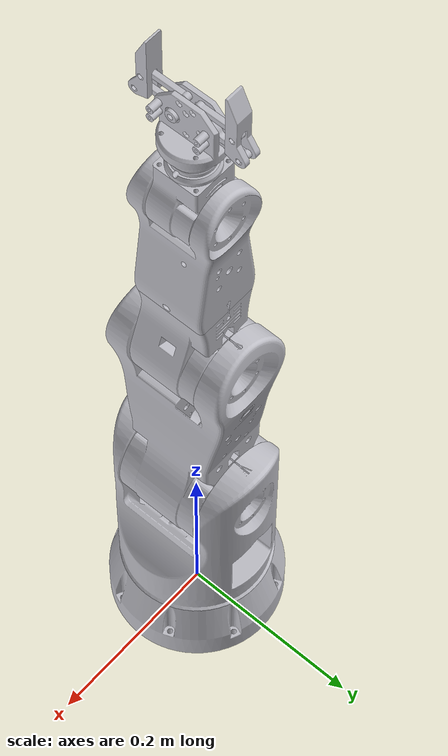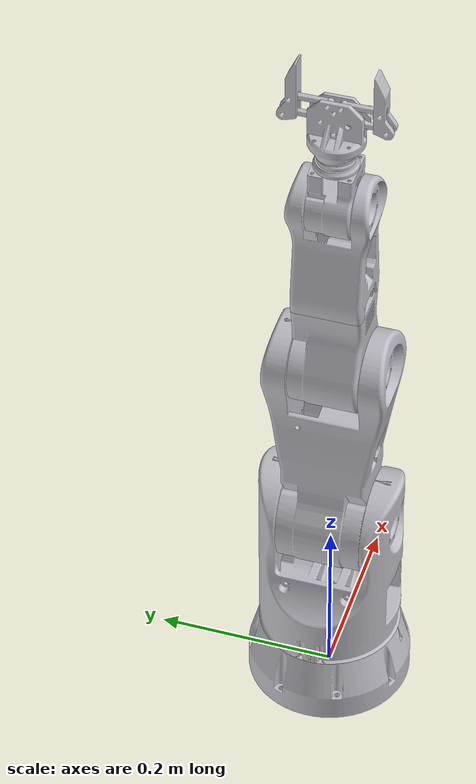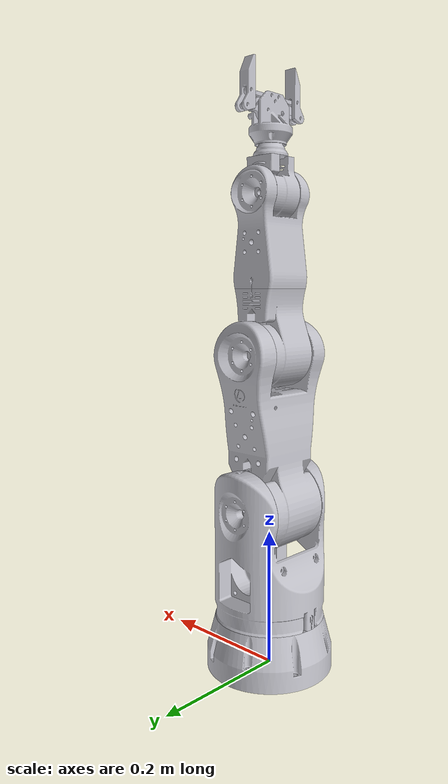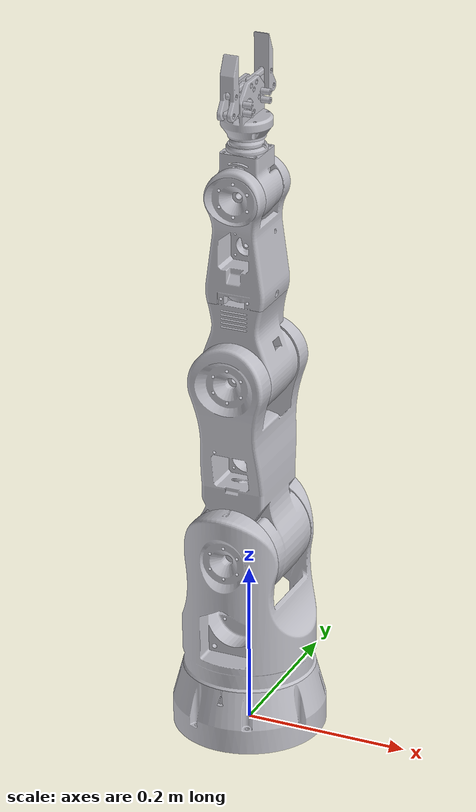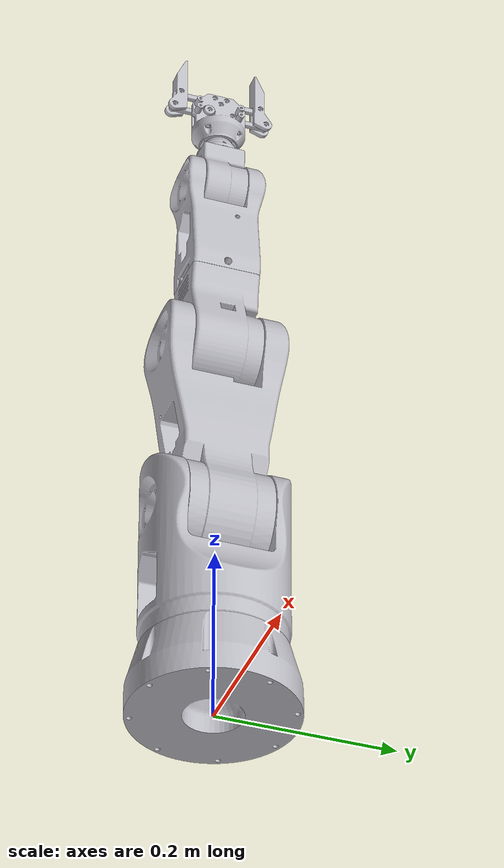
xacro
<?xml version="1.0" ?>
<robot name="innobot" xmlns:xacro="http://www.ros.org/wiki/xacro">

  <!-- external -->
  <link name="world"/>

  <link name="camera_frame"/>

  <xacro:arg name="use_fake_hardware" default="true" />
  <xacro:arg name="use_sim" default="false" />
  <xacro:arg name="fake_sensor_commands" default="false" />
  <xacro:arg name="prefix" default=""/>
  <xacro:arg name="slowdown" default="2.0"/>
  <xacro:arg name="use_gripper" default="true"/>

  <!-- innobot arm -->

  <xacro:include filename="$(find innobot_description)/urdf/innobot.description.urdf.xacro" />
  <xacro:include filename="$(find innobot_description)/urdf/innobot.control.urdf.xacro" />

  <xacro:innobot_arm
      prefix="$(arg prefix)"
     />

  <xacro:innobot_arm_ros2_control
    name="InnobotHardwareInterface" prefix="$(arg prefix)"
    use_sim="$(arg use_sim)"
    use_fake_hardware="$(arg use_fake_hardware)"
    fake_sensor_commands="$(arg fake_sensor_commands)"
    slowdown="$(arg slowdown)" />

  <!-- gripper -->

  <xacro:if value="$(arg use_gripper)">

    <xacro:include filename="$(find innobot_description)/gripper_description/urdf/gripper.description.urdf.xacro" />
    <xacro:include filename="$(find innobot_description)/gripper_description/urdf/gripper.control.urdf.xacro" />

    <joint name="$(arg prefix)gripper_to_arm" type="fixed">
      <origin xyz="0.0 0.0 0.035" rpy="0 0 0"/>
      <parent link="$(arg prefix)link_6_1"/>
      <child link="$(arg prefix)gripper_base_link"/>
      <axis xyz="-0.0 0.0 1.0"/>
    </joint>

    <xacro:innobot_gripper prefix="$(arg prefix)"/>

    <xacro:innobot_gripper_ros2_control
      name="GripperHardwareInterface" prefix="$(arg prefix)"
      use_sim="$(arg use_sim)"
      use_fake_hardware="$(arg use_fake_hardware)"
      fake_sensor_commands="$(arg fake_sensor_commands)"
      slowdown="$(arg slowdown)" />

    <!-- connect gripper and arm -->

  </xacro:if>

</robot>

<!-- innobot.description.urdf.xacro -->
<robot xmlns:xacro="http://www.ros.org/wiki/xacro">

  <xacro:macro name="innobot_arm" params="prefix">

    <xacro:arg name="prefix" default="" />

    <!-- links -->

    <link name="${prefix}base_link">
      <inertial>
        <origin rpy="0 0 0" xyz="0.0 0.0 0.0"/>
        <mass value="13.855"/>
        <inertia ixx="0.035465" ixy="0.0" ixz="-0.0" iyy="0.035483" iyz="-6e-06" izz="0.056413"/>
      </inertial>
      <visual>
        <origin rpy="0 0 0" xyz="0 0 0"/>
        <geometry>
          <mesh filename="package://innobot_description/meshes/base_link.stl" scale="0.001 0.001 0.001"/>
        </geometry>
        <material name="silver"/>
      </visual>
      <collision>
        <origin rpy="0 0 0" xyz="0 0 0"/>
        <geometry>
          <mesh filename="package://innobot_description/meshes/base_link.stl" scale="0.001 0.001 0.001"/>
        </geometry>
      </collision>
    </link>

    <link name="${prefix}link_1_1">
      <inertial>
        <origin rpy="0 0 0" xyz="0.0 0.0 0.0"/>
        <mass value="12.011"/>
        <inertia ixx="0.06297" ixy="0.0" ixz="-0.0" iyy="0.071" iyz="9.4e-05" izz="0.046659"/>
      </inertial>
      <visual>
        <origin rpy="0 0 0" xyz="0.0 0.0 -0.075"/>
        <geometry>
          <mesh filename="package://innobot_description/meshes/link_1_1.stl" scale="0.001 0.001 0.001"/>
        </geometry>
        <material name="silver"/>
      </visual>
      <collision>
        <origin rpy="0 0 0" xyz="0.0 0.0 -0.075"/>
        <geometry>
          <mesh filename="package://innobot_description/meshes/link_1_1.stl" scale="0.001 0.001 0.001"/>
        </geometry>
      </collision>
    </link>

    <link name="${prefix}link_2_1">
      <inertial>
        <origin rpy="0 0 0" xyz="0.0 0.0 0.075"/>
        <mass value="15.936"/>
        <inertia ixx="0.134333" ixy="-2.7e-05" ixz="-0.000521" iyy="0.140602" iyz="7.6e-05" izz="0.030731"/>
      </inertial>
      <visual>
        <origin rpy="0 0 0" xyz="0.0 0.0 -0.238"/>
        <geometry>
          <mesh filename="package://innobot_description/meshes/link_2_1.stl" scale="0.001 0.001 0.001"/>
        </geometry>
        <material name="silver"/>
      </visual>
      <collision>
        <origin rpy="0 0 0" xyz="0.0 0.0 -0.238"/>
        <geometry>
          <mesh filename="package://innobot_description/meshes/link_2_1.stl" scale="0.001 0.001 0.001"/>
        </geometry>
      </collision>
    </link>

    <link name="${prefix}link_3_1">
      <inertial>
        <origin rpy="0 0 0" xyz="0.0 0.0 0.0155"/>
        <mass value="5.041004757219209"/>
        <inertia ixx="0.009332" ixy="-2e-06" ixz="-4.5e-05" iyy="0.009148" iyz="6.6e-05" izz="0.005579"/>
      </inertial>
      <visual>
        <origin rpy="0 0 0" xyz="0.0 0.0 -0.459"/>
        <geometry>
          <mesh filename="package://innobot_description/meshes/link_3_1.stl" scale="0.001 0.001 0.001"/>
        </geometry>
        <material name="silver"/>
      </visual>
      <collision>
        <origin rpy="0 0 0" xyz="0.0 0.0 -0.459"/>
        <geometry>
          <mesh filename="package://innobot_description/meshes/link_3_1.stl" scale="0.001 0.001 0.001"/>
        </geometry>
      </collision>
    </link>

    <link name="${prefix}link_4_1">
      <inertial>
        <origin rpy="0 0 0" xyz="0.0 0.0 0.0"/>
        <mass value="3.5598085247676114"/>
        <inertia ixx="0.008642" ixy="1e-06" ixz="-7.4e-05" iyy="0.009421" iyz="-1.6e-05" izz="0.003882"/>
      </inertial>
      <visual>
        <origin rpy="0 0 0" xyz="0.0 0.0 -0.56"/>
        <geometry>
          <mesh filename="package://innobot_description/meshes/link_4_1.stl" scale="0.001 0.001 0.001"/>
        </geometry>
        <material name="silver"/>
      </visual>
      <collision>
        <origin rpy="0 0 0" xyz="0.0 0.0 -0.56"/>
        <geometry>
          <mesh filename="package://innobot_description/meshes/link_4_1.stl" scale="0.001 0.001 0.001"/>
        </geometry>
      </collision>
    </link>

    <link name="${prefix}link_5_1">
      <inertial>
        <origin rpy="0 0 0" xyz="0.0 0.0 0.004"/>
        <mass value="1.3072389659535424"/>
        <inertia ixx="0.000919" ixy="0.0" ixz="3e-06" iyy="0.000767" iyz="-1.6e-05" izz="0.000684"/>
      </inertial>
      <visual>
        <origin rpy="0 0 0" xyz="0.0 0.0 -0.683"/>
        <geometry>
          <mesh filename="package://innobot_description/meshes/link_5_1.stl" scale="0.001 0.001 0.001"/>
        </geometry>
        <material name="silver"/>
      </visual>
      <collision>
        <origin rpy="0 0 0" xyz="0.0 0.0 -0.683"/>
        <geometry>
          <mesh filename="package://innobot_description/meshes/link_5_1.stl" scale="0.001 0.001 0.001"/>
        </geometry>
      </collision>
    </link>

    <link name="${prefix}link_6_1">
      <inertial>
        <origin rpy="0 0 0" xyz="0.0 0.0 0.040"/>
        <mass value="0.16956132368991875"/>
        <inertia ixx="2.5e-05" ixy="-0.0" ixz="0.0" iyy="2.5e-05" iyz="-0.0" izz="4.1e-05"/>
      </inertial>
      <visual>
        <origin rpy="0 0 0" xyz="0.0 0.0 -0.734"/>
        <geometry>
          <mesh filename="package://innobot_description/meshes/link_6_1.stl" scale="0.001 0.001 0.001"/>
        </geometry>
        <material name="silver"/>
      </visual>
      <collision>
        <origin rpy="0 0 0" xyz="0.0 0.0 -0.734"/>
        <geometry>
          <mesh filename="package://innobot_description/meshes/link_6_1.stl" scale="0.001 0.001 0.001"/>
        </geometry>
      </collision>
    </link>

    <link name="${prefix}tcp">

    </link>

    <!-- joints -->

    <joint name="${prefix}fixed" type="fixed">
      <parent link="${prefix}world"/>
      <child link="${prefix}base_link"/>
    </joint>

    <joint name="${prefix}link_1_joint" type="revolute">
      <origin rpy="0 0 -1.57" xyz="0.0 0.0 0.075"/>
      <parent link="${prefix}base_link"/>
      <child link="${prefix}link_1_1"/>
      <axis xyz="0.0 0.0 -1.0"/>
      <limit effort="150" velocity="1.0" lower="-2.1" upper="2.1"/>
    </joint>

    <joint name="${prefix}link_2_joint" type="revolute">
      <origin rpy="0 0 0" xyz="0.0 0.0 0.163"/>
      <parent link="${prefix}link_1_1"/>
      <child link="${prefix}link_2_1"/>
      <axis xyz="-1.0 0.0 0.0"/>
      <limit effort="150" velocity="1.0" lower="-1.5" upper="1.5"/>
    </joint>

    <joint name="${prefix}link_3_joint" type="revolute">
      <origin rpy="0 0 0" xyz="0.0 0.0 0.221"/>
      <parent link="${prefix}link_2_1"/>
      <child link="${prefix}link_3_1"/>
      <axis xyz="-1.0 0.0 0.0"/>
      <limit effort="150" velocity="1.0" lower="-1.5" upper="1.5"/>
    </joint>

    <joint name="${prefix}link_4_joint" type="revolute">
      <origin rpy="0 0 0" xyz="0.0 0.0 0.10"/>
      <parent link="${prefix}link_3_1"/>
      <child link="${prefix}link_4_1"/>
      <axis xyz="0.0 0.0 -1.0"/>
      <limit effort="150" velocity="1.0" lower="-1.5" upper="1.5"/>
    </joint>

    <joint name="${prefix}link_5_joint" type="revolute">
      <origin rpy="0 0 0" xyz="0.0 0.0 0.123"/>
      <parent link="${prefix}link_4_1"/>
      <child link="${prefix}link_5_1"/>
      <axis xyz="-1.0 0.0 0.0"/>
      <limit effort="150" velocity="1.0" lower="-1.5" upper="1.5"/>
    </joint>

    <joint name="${prefix}link_6_joint" type="revolute">
      <origin rpy="0 0 0" xyz="0.0 0.0 0.05"/>
      <parent link="${prefix}link_5_1"/>
      <child link="${prefix}link_6_1"/>
      <axis xyz="0.0 0.0 -1.0"/>
      <limit effort="150" velocity="1.0" lower="-3.14" upper="3.14"/>
    </joint>

    <joint name="${prefix}tcp_joint" type="fixed">
      <origin rpy="0 0 0" xyz="0.0 0.0 0.13"/>
      <parent link="${prefix}link_6_1"/>
      <child link="${prefix}tcp"/>
      <axis xyz="0.0 0.0 -1.0"/>
      <limit effort="150" velocity="1.0" lower="-3.14" upper="3.14"/>
    </joint>

    <joint name="${prefix}world_to_camera" type="fixed">
      <parent link="${prefix}world"/>
      <child link="${prefix}camera_frame"/>
      <origin xyz="0.0 -0.5 1.25" rpy="0 0 0"/>
    </joint>

  </xacro:macro>

</robot>

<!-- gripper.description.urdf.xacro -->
<robot xmlns:xacro="http://www.ros.org/wiki/xacro">

     <xacro:macro name="mimic_joint_plugin_gazebo" params="name_prefix parent_joint mimic_joint has_pid:=false multiplier:=1.0 offset:=0 sensitiveness:=0.0 max_effort:=1.0 robot_namespace:=''">
        <gazebo>
        <plugin name="${name_prefix}mimic_joint_plugin" filename="libroboticsgroup_gazebo_mimic_joint_plugin.so">
            <joint>${parent_joint}</joint>
            <mimicJoint>${mimic_joint}</mimicJoint>
            <xacro:if value="${has_pid}">                     <!-- if set to true, PID parameters from "/gazebo_ros_control/pid_gains/${mimic_joint}" are loaded -->
                <hasPID />
            </xacro:if>
            <multiplier>${multiplier}</multiplier>
            <offset>${offset}</offset>
            <sensitiveness>${sensitiveness}</sensitiveness>   <!-- if absolute difference between setpoint and process value is below this threshold, do nothing; 0.0 = disable [rad] -->
            <maxEffort>${max_effort}</maxEffort>              <!-- only taken into account if has_pid:=true [Nm] -->
            <xacro:unless value="${robot_namespace == ''}">
                <robotNamespace>($robot_namespace)</robotNamespace>
            </xacro:unless>
        </plugin>
        </gazebo>
    </xacro:macro>

  <xacro:macro name="innobot_gripper" params="prefix">

    <link name="${prefix}gripper_base_link">
      <inertial>
        <origin xyz="7.274575615099804e-05 2.505983529119562e-06 0.007252366417755507" rpy="0 0 0"/>
        <mass value="0.5374075429473185"/>
        <inertia ixx="0.000224" iyy="0.000267" izz="0.000226" ixy="-1e-06" iyz="-2e-06" ixz="-1e-06"/>
      </inertial>
      <visual>
        <origin xyz="0 0 0" rpy="0 0 0"/>
        <geometry>
          <mesh filename="package://innobot_description/gripper_description/meshes/gripper_base_link.stl" scale="0.001 0.001 0.001"/>
        </geometry>
        <material name="silver"/>
      </visual>
      <collision>
        <origin xyz="0 0 0" rpy="0 0 0"/>
        <geometry>
          <mesh filename="package://innobot_description/gripper_description/meshes/gripper_base_link.stl" scale="0.001 0.001 0.001"/>
        </geometry>
      </collision>
    </link>

    <link name="${prefix}gripper_shoulder_upper_right_1">
      <inertial>
        <origin xyz="0.020000015929033884 0.003999998638672086 2.6482678550099337e-10" rpy="0 0 0"/>
        <mass value="0.012854575385027496"/>
        <inertia ixx="0.0" iyy="2e-06" izz="2e-06" ixy="0.0" iyz="-0.0" ixz="-0.0"/>
      </inertial>
      <visual>
        <origin xyz="-0.007 0.004 -0.044" rpy="0 0 0"/>
        <geometry>
          <mesh filename="package://innobot_description/gripper_description/meshes/gripper_shoulder_upper_right_1.stl" scale="0.001 0.001 0.001"/>
        </geometry>
        <material name="silver"/>
      </visual>
      <collision>
        <origin xyz="-0.007 0.004 -0.044" rpy="0 0 0"/>
        <geometry>
          <mesh filename="package://innobot_description/gripper_description/meshes/gripper_shoulder_upper_right_1.stl" scale="0.001 0.001 0.001"/>
        </geometry>
      </collision>
    </link>

    <link name="${prefix}gripper_shoulder_lower_right_1">
      <inertial>
        <origin xyz="0.005554143092090817 0.00510620755788157 -0.0003329198861910035" rpy="0 0 0"/>
        <mass value="0.044576865883984705"/>
        <inertia ixx="2e-06" iyy="9e-06" izz="8e-06" ixy="0.0" iyz="-0.0" ixz="-0.0"/>
      </inertial>
      <visual>
        <origin xyz="-0.014 0.004 -0.024" rpy="0 0 0"/>
        <geometry>
          <mesh filename="package://innobot_description/gripper_description/meshes/gripper_shoulder_lower_right_1.stl" scale="0.001 0.001 0.001"/>
        </geometry>
        <material name="silver"/>
      </visual>
      <collision>
        <origin xyz="-0.014 0.004 -0.024" rpy="0 0 0"/>
        <geometry>
          <mesh filename="package://innobot_description/gripper_description/meshes/gripper_shoulder_lower_right_1.stl" scale="0.001 0.001 0.001"/>
        </geometry>
      </collision>
    </link>

    <link name="${prefix}gripper_finger_right_1">
      <inertial>
        <origin xyz="-0.007345938165377042 0.0029516918108567244 0.027163443177206467" rpy="0 0 0"/>
        <mass value="0.09442988469167828"/>
        <inertia ixx="3.8e-05" iyy="3.7e-05" izz="5e-06" ixy="0.0" iyz="-0.0" ixz="4e-06"/>
      </inertial>
      <visual>
        <origin xyz="-0.054 0.003 -0.024" rpy="0 0 0"/>
        <geometry>
          <mesh filename="package://innobot_description/gripper_description/meshes/gripper_finger_right_1.stl" scale="0.001 0.001 0.001"/>
        </geometry>
        <material name="silver"/>
      </visual>
      <collision>
        <origin xyz="-0.054 0.003 -0.024" rpy="0 0 0"/>
        <geometry>
          <mesh filename="package://innobot_description/gripper_description/meshes/gripper_finger_right_1.stl" scale="0.001 0.001 0.001"/>
        </geometry>
      </collision>
    </link>

    <link name="${prefix}gripper_shoulder_upper_left_1">
      <inertial>
        <origin xyz="-0.019999984070966367 0.0039999986386720955 2.648270491789617e-10" rpy="0 0 0"/>
        <mass value="0.012854575385027217"/>
        <inertia ixx="0.0" iyy="2e-06" izz="2e-06" ixy="0.0" iyz="0.0" ixz="-0.0"/>
      </inertial>
      <visual>
        <origin xyz="0.007 0.004 -0.044" rpy="0 0 0"/>
        <geometry>
          <mesh filename="package://innobot_description/gripper_description/meshes/gripper_shoulder_upper_left_1.stl" scale="0.001 0.001 0.001"/>
        </geometry>
        <material name="silver"/>
      </visual>
      <collision>
        <origin xyz="0.007 0.004 -0.044" rpy="0 0 0"/>
        <geometry>
          <mesh filename="package://innobot_description/gripper_description/meshes/gripper_shoulder_upper_left_1.stl" scale="0.001 0.001 0.001"/>
        </geometry>
      </collision>
    </link>

    <link name="${prefix}gripper_shoulder_lower_left_1">
      <inertial>
        <origin xyz="-0.00645222840424718 0.003999996700491056 -0.0004062980955956176" rpy="0 0 0"/>
        <mass value="0.038506719386524994"/>
        <inertia ixx="2e-06" iyy="9e-06" izz="7e-06" ixy="0.0" iyz="-0.0" ixz="0.0"/>
      </inertial>
      <visual>
        <origin xyz="0.014 0.004 -0.024" rpy="0 0 0"/>
        <geometry>
          <mesh filename="package://innobot_description/gripper_description/meshes/gripper_shoulder_lower_left_1.stl" scale="0.001 0.001 0.001"/>
        </geometry>
        <material name="silver"/>
      </visual>
      <collision>
        <origin xyz="0.014 0.004 -0.024" rpy="0 0 0"/>
        <geometry>
          <mesh filename="package://innobot_description/gripper_description/meshes/gripper_shoulder_lower_left_1.stl" scale="0.001 0.001 0.001"/>
        </geometry>
      </collision>
    </link>

    <link name="${prefix}gripper_finger_left_1">
      <inertial>
        <origin xyz="0.007342669733612722 0.00294742532298488 0.027148856997984742" rpy="0 0 0"/>
        <mass value="0.09451020323548479"/>
        <inertia ixx="3.8e-05" iyy="3.7e-05" izz="5e-06" ixy="-0.0" iyz="-0.0" ixz="-4e-06"/>
      </inertial>
      <visual>
        <origin xyz="0.054 0.003 -0.024" rpy="0 0 0"/>
        <geometry>
          <mesh filename="package://innobot_description/gripper_description/meshes/gripper_finger_left_1.stl" scale="0.001 0.001 0.001"/>
        </geometry>
        <material name="silver"/>
      </visual>
      <collision>
        <origin xyz="0.054 0.003 -0.024" rpy="0 0 0"/>
        <geometry>
          <mesh filename="package://innobot_description/gripper_description/meshes/gripper_finger_left_1.stl" scale="0.001 0.001 0.001"/>
        </geometry>
      </collision>
    </link>

    <joint name="${prefix}right_finger_joint" type="continuous">
      <origin xyz="0.014 -0.004 0.024" rpy="0 0 0"/>
      <parent link="${prefix}gripper_base_link"/>
      <child link="${prefix}gripper_shoulder_lower_right_1"/>
      <axis xyz="0.0 -1.0 0.0"/>
    </joint>

    <joint name="${prefix}gripper_joint_1" type="continuous">
      <origin xyz="0.007 -0.004 0.044" rpy="0 0 0"/>
      <parent link="${prefix}gripper_base_link"/>
      <child link="${prefix}gripper_shoulder_upper_right_1"/>
      <axis xyz="0.0 -1.0 0.0"/>
      <mimic joint="${prefix}right_finger_joint" multiplier="1" offset="0"/>
    </joint>

    <xacro:mimic_joint_plugin_gazebo name_prefix="joint_1_to_right_finger_joint"
    parent_joint="${prefix}right_finger_joint" mimic_joint="${prefix}gripper_joint_1"
    has_pid="false" multiplier="1.0" max_effort="1000.0" />

    <joint name="${prefix}gripper_joint_3" type="continuous">
      <origin xyz="0.04 0.001 0.0" rpy="0 0 0"/>
      <parent link="${prefix}gripper_shoulder_lower_right_1"/>
      <child link="${prefix}gripper_finger_right_1"/>
      <axis xyz="0.0 1.0 0.0"/>
      <mimic joint="${prefix}right_finger_joint" multiplier="1" offset="0"/>
    </joint>

    <xacro:mimic_joint_plugin_gazebo name_prefix="joint_3_to_right_finger_joint"
    parent_joint="${prefix}right_finger_joint" mimic_joint="${prefix}gripper_joint_3"
    has_pid="false" multiplier="1.0" max_effort="1000.0" />

    <joint name="${prefix}gripper_joint_4" type="continuous">
      <origin xyz="-0.007 -0.004 0.044" rpy="0 0 0"/>
      <parent link="${prefix}gripper_base_link"/>
      <child link="${prefix}gripper_shoulder_upper_left_1"/>
      <axis xyz="0.0 1.0 0.0"/>
      <mimic joint="${prefix}right_finger_joint" multiplier="1" offset="0"/>
    </joint>

    <xacro:mimic_joint_plugin_gazebo name_prefix="joint_4_to_right_finger_joint"
    parent_joint="${prefix}right_finger_joint" mimic_joint="${prefix}gripper_joint_4"
    has_pid="false" multiplier="1.0" max_effort="1000.0" />

    <joint name="${prefix}left_finger_joint" type="continuous">
      <origin xyz="-0.014 -0.004 0.024" rpy="0 0 0"/>
      <parent link="${prefix}gripper_base_link"/>
      <child link="${prefix}gripper_shoulder_lower_left_1"/>
      <axis xyz="0.0 1.0 0.0"/>
      <mimic joint="${prefix}right_finger_joint" multiplier="1" offset="0"/>
    </joint>

    <xacro:mimic_joint_plugin_gazebo name_prefix="left_finger_joint_to_right_finger_joint"
    parent_joint="${prefix}right_finger_joint" mimic_joint="${prefix}left_finger_joint"
    has_pid="false" multiplier="1.0" max_effort="1000.0" />

    <joint name="${prefix}gripper_joint_6" type="continuous">
      <origin xyz="-0.04 0.001 0.0" rpy="0 0 0"/>
      <parent link="${prefix}gripper_shoulder_lower_left_1"/>
      <child link="${prefix}gripper_finger_left_1"/>
      <axis xyz="0.0 1.0 0.0"/>
      <mimic joint="${prefix}right_finger_joint" multiplier="-1" offset="0"/>
    </joint>

    <xacro:mimic_joint_plugin_gazebo name_prefix="joint_6_to_right_finger_joint"
    parent_joint="${prefix}right_finger_joint" mimic_joint="${prefix}gripper_joint_6"
    has_pid="false" multiplier="-1.0" max_effort="1000.0" />

    <!-- might not need for gazebo or rviz -->

  </xacro:macro>
</robot>
